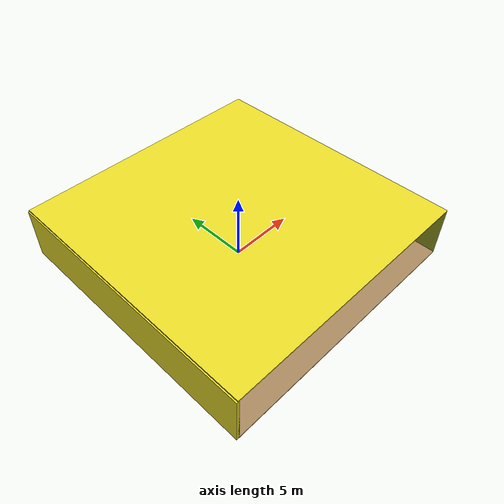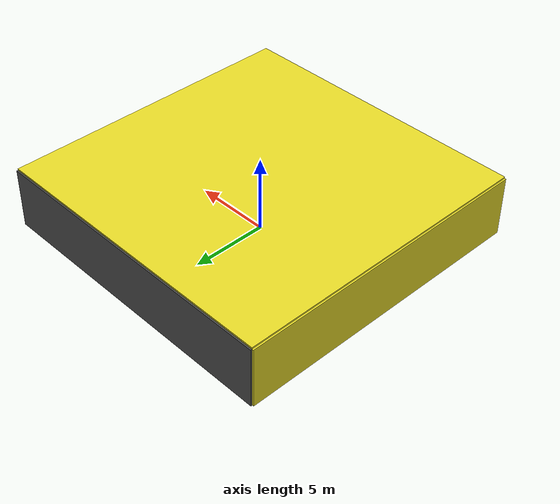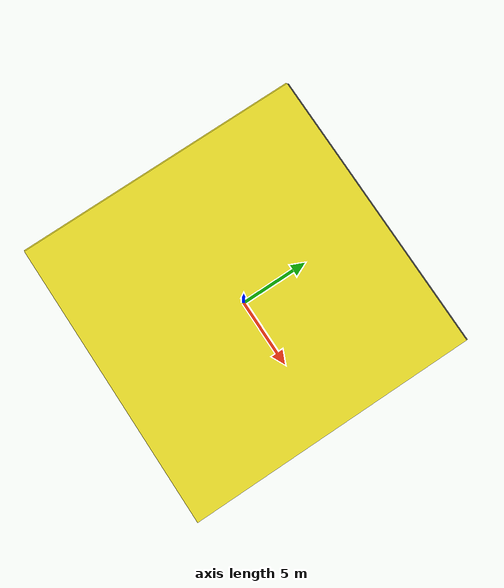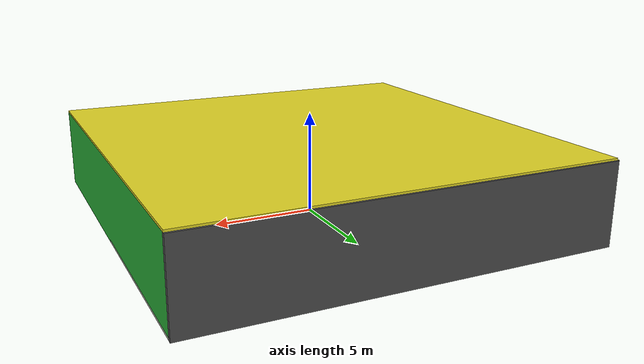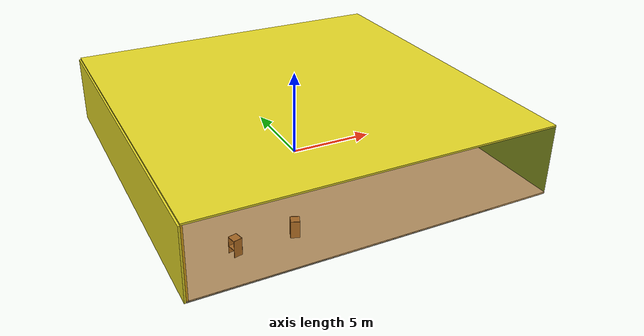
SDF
<sdf version="1.4">
 <world name="default">
  <physics type="ode">
   <max_step_size>0.001</max_step_size>
   <real_time_factor>1</real_time_factor>
   <real_time_update_rate>1000</real_time_update_rate>
   <gravity>0 0 -9.8</gravity>
  </physics>
  <scene><ambient>0.4 0.4 0.4 1</ambient><background>0.7 0.7 0.7 1</background><shadows>1</shadows></scene>
  <model name="Surrounding">
   <static>1</static>
   <link name="Ceiling">
    <collision name="Ceiling_Collision"><geometry><box><size>20 20 0.1</size></box></geometry></collision>
    <visual name="Ceiling_Visual">
     <geometry><box><size>20 20 0.1</size></box></geometry>
     <material>
      <script><uri>file://media/materials/scripts/gazebo.material</uri><name>Gazebo/Yellow</name></script>
     </material>
    </visual>
    <pose>0 0 4.05 0 0 0</pose>
   </link>
   <link name="Wall_South">
    <collision name="Wall_South_Collision">
     <geometry><box><size>20 0 4</size></box></geometry>
     <pose>0 0 2 0 -0 0</pose>
    </collision>
    <visual name="Wall_South_Visual">
     <pose>0 0 2 0 -0 0</pose>
     <geometry><box><size>20 0 4</size></box></geometry>
     <material>
      <script>
       <uri>file://media/materials/scripts/gazebo.material</uri>
       <name>Gazebo/OrangeTransparent</name>
      </script>
     </material>
    </visual>
    <velocity_decay><linear>0</linear><angular>0</angular></velocity_decay>
    <pose>0 -10 0 0 -0 0</pose>
   </link>
   <link name="Wall_East">
    <collision name="Wall_21_Collision">
     <geometry><box><size>20 0 4</size></box></geometry>
     <pose>0 0 2 0 -0 0</pose>
    </collision>
    <visual name="Wall_21_Visual">
     <pose>0 0 2 0 -0 0</pose>
     <geometry><box><size>20 0 4</size></box></geometry>
     <material>
      <script><uri>file://media/materials/scripts/gazebo.material</uri><name>Gazebo/Green</name></script>
     </material>
    </visual>
    <velocity_decay><linear>0</linear><angular>0</angular></velocity_decay>
    <pose>10 0 0 0 -0 1.5708</pose>
   </link>
   <link name="Wall_North">
    <collision name="Wall_22_Collision">
     <geometry><box><size>20 0.2 4</size></box></geometry>
     <pose>0 0 2 0 -0 0</pose>
    </collision>
    <visual name="Wall_22_Visual">
     <pose>0 0 2 0 -0 0</pose>
     <geometry><box><size>20 0.2 4</size></box></geometry>
     <material>
      <script><uri>file://media/materials/scripts/gazebo.material</uri><name>Gazebo/DarkGrey</name></script>
     </material>
    </visual>
    <velocity_decay><linear>0</linear><angular>0</angular></velocity_decay>
    <pose>0 10 0 0 -0 0</pose>
   </link>
   <link name="Wall_West">
    <collision name="Wall_23_Collision">
     <geometry><box><size>20 0.2 4</size></box></geometry>
     <pose>0 0 2 0 -0 0</pose>
    </collision>
    <visual name="Wall_23_Visual">
     <pose>0 0 2 0 -0 0</pose>
     <geometry><box><size>20 0.2 4</size></box></geometry>
     <material>
      <script><uri>file://media/materials/scripts/gazebo.material</uri><name>Gazebo/YellowGlow</name></script>
     </material>
    </visual>
    <velocity_decay><linear>0</linear><angular>0</angular></velocity_decay>
    <pose>-10 0 0 0 0 -1.5708</pose>
   </link>
   <link name="Ground_link">
    <collision name="collision">
     <pose>0 0 .05 0 -0 0</pose>
     <geometry><box><size>20 20 0.1</size></box></geometry>
    </collision>
    <visual name="visual">
     <pose>0 0 .05 0 -0 0</pose>
     <geometry><box><size>20 20 0.1</size></box></geometry>
     <material>
      <script><uri>file://media/materials/scripts/gazebo.material</uri><name>Gazebo/PaintedWall</name></script>
     </material>
    </visual>
   </link>
   <static>1</static>
  </model>
  <spherical_coordinates>
   <surface_model>EARTH_WGS84</surface_model>
   <latitude_deg>0</latitude_deg>
   <longitude_deg>0</longitude_deg>
   <elevation>0</elevation>
   <heading_deg>0</heading_deg>
  </spherical_coordinates>
  <light name="lightball_0" type="diffuse">
   <diffuse>0.8 0.8 0.8 1</diffuse>
   <specular>0.2 0.2 0.2 1</specular>
   <attenuation>
    <range>100</range>
    <constant>0.7</constant>
    <linear>0.01</linear>
    <quadratic>0.001</quadratic>
   </attenuation>
   <direction>-0.5 0.1 -0.9</direction>
   <pose>4.12151846174 -9.40675837617 0.686573821067 0 0 0</pose>
  </light>
  <light name="lightball_1" type="diffuse">
   <diffuse>0.8 0.8 0.8 1</diffuse>
   <specular>0.2 0.2 0.2 1</specular>
   <attenuation>
    <range>100</range>
    <constant>0.7</constant>
    <linear>0.01</linear>
    <quadratic>0.001</quadratic>
   </attenuation>
   <direction>-0.5 0.1 -0.9</direction>
   <pose>-0.893157195437 -9.47017485237 2.62647722994 0 0 0</pose>
  </light>
  <light name="lightball_2" type="diffuse">
   <diffuse>0.8 0.8 0.8 1</diffuse>
   <specular>0.2 0.2 0.2 1</specular>
   <attenuation>
    <range>100</range>
    <constant>0.7</constant>
    <linear>0.01</linear>
    <quadratic>0.001</quadratic>
   </attenuation>
   <direction>-0.5 0.1 -0.9</direction>
   <pose>-8.37108562314 8.3027156793 1.69457150225 0 0 0</pose>
  </light>
  <light name="lightball_3" type="diffuse">
   <diffuse>0.8 0.8 0.8 1</diffuse>
   <specular>0.2 0.2 0.2 1</specular>
   <attenuation>
    <range>100</range>
    <constant>0.7</constant>
    <linear>0.01</linear>
    <quadratic>0.001</quadratic>
   </attenuation>
   <direction>-0.5 0.1 -0.9</direction>
   <pose>9.65167441642 4.83763563646 1.05634766143 0 0 0</pose>
  </light>
  <light name="lightball_4" type="diffuse">
   <diffuse>0.8 0.8 0.8 1</diffuse>
   <specular>0.2 0.2 0.2 1</specular>
   <attenuation>
    <range>100</range>
    <constant>0.7</constant>
    <linear>0.01</linear>
    <quadratic>0.001</quadratic>
   </attenuation>
   <direction>-0.5 0.1 -0.9</direction>
   <pose>-5.93330484524 -9.99966683873 2.51144755324 0 0 0</pose>
  </light>
  <light name="lightball_5" type="diffuse">
   <diffuse>0.8 0.8 0.8 1</diffuse>
   <specular>0.2 0.2 0.2 1</specular>
   <attenuation>
    <range>100</range>
    <constant>0.7</constant>
    <linear>0.01</linear>
    <quadratic>0.001</quadratic>
   </attenuation>
   <direction>-0.5 0.1 -0.9</direction>
   <pose>1.76334917781 1.99703011356 0.865303091492 0 0 0</pose>
  </light>
  <light name="lightball_6" type="diffuse">
   <diffuse>0.8 0.8 0.8 1</diffuse>
   <specular>0.2 0.2 0.2 1</specular>
   <attenuation>
    <range>100</range>
    <constant>0.7</constant>
    <linear>0.01</linear>
    <quadratic>0.001</quadratic>
   </attenuation>
   <direction>-0.5 0.1 -0.9</direction>
   <pose>0.71344864463 8.96085175795 1.42413168367 0 0 0</pose>
  </light>
  <light name="lightball_7" type="diffuse">
   <diffuse>0.8 0.8 0.8 1</diffuse>
   <specular>0.2 0.2 0.2 1</specular>
   <attenuation>
    <range>100</range>
    <constant>0.7</constant>
    <linear>0.01</linear>
    <quadratic>0.001</quadratic>
   </attenuation>
   <direction>-0.5 0.1 -0.9</direction>
   <pose>1.05778921956 -1.36179255665 0.615884670695 0 0 0</pose>
  </light>
  <include><uri>model://cabinet</uri><pose>-6.86172420582 -7.81676137486 0 0 0 0.223134292191</pose></include>
  <include><uri>model://cabinet</uri><pose>-6.75465706518 2.03214491006 0 0 0 2.20158276703</pose></include>
  <include><uri>model://cabinet</uri><pose>-3.70400551722 -7.68925500103 0 0 0 2.7519936421</pose></include>
  <include>
   <uri>model://construction_cone</uri>
   <pose>-4.90297646675 -4.05390539785 0 0 0 1.11958263804</pose>
  </include>
  <include><uri>model://table</uri><pose>-4.65975750182 7.37170494683 0 0 0 0.0316004142623</pose></include>
  <include><uri>model://cabinet</uri><pose>-1.82965412111 1.33384620185 0 0 0 3.02196489329</pose></include>
  <include>
   <uri>model://construction_cone</uri>
   <pose>1.82000554197 5.2776077325 0 0 0 1.23297419827</pose>
  </include>
  <include><uri>model://cabinet</uri><pose>5.05108891549 5.11323223638 0 0 0 1.71393169411</pose></include>
  <include>
   <uri>model://construction_cone</uri>
   <pose>7.80398136237 7.55664723044 0 0 0 0.131193396156</pose>
  </include>
 </world>
</sdf>

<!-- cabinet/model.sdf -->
<sdf version="1.5">
  <model name="cabinet">
    <static>true</static>
    <link name="cabinet_bottom_plate">
      <inertial>
        <pose>0 0 -1 0 0 0</pose>
        <inertia>
          <ixx>2.050000</ixx>
          <ixy>0</ixy>
          <ixz>0</ixz>
          <iyy>2.050000</iyy>
          <iyz>0</iyz>
          <izz>2.050000</izz>
        </inertia>
        <mass>25.000000</mass>
      </inertial>
      <collision name="cabinet_bottom_plate_geom">
        <pose>0 0 0.010000 0 0 0</pose>
        <geometry>
          <box>
            <size>0.450000 0.450000 0.020000</size>
          </box>
        </geometry>
      </collision>
      <visual name="cabinet_bottom_plate_geom_visual">
        <pose>0 0 0.010000 0 0 0</pose>
        <geometry>
          <box>
            <size>0.450000 0.450000 0.020000</size>
          </box>
        </geometry>
        <material>
          <script>
            <uri>model://media/materials/scripts/gazebo.material</uri>
            <name>Gazebo/Wood</name>
          </script>
        </material>
      </visual>
      <collision name="cabinet_bottom_plate_geom_cabinet_back_plate">
        <pose>0.235000 0 0.510000 0 0 0</pose>
        <geometry>
          <box>
            <size>0.020000 0.450000 1.020000</size>
          </box>
        </geometry>
      </collision>
      <visual name="cabinet_bottom_plate_geom_cabinet_back_plate_visual">
        <pose>0.235000 0 0.510000 0 0 0</pose>
        <geometry>
          <box>
            <size>0.020000 0.450000 1.020000</size>
          </box>
        </geometry>
        <material>
          <script>
            <uri>model://media/materials/scripts/gazebo.material</uri>
            <name>Gazebo/Wood</name>
          </script>
        </material>
      </visual>
      <collision name="cabinet_bottom_plate_geom_cabinet_left_plate">
        <pose>0 0.235000 0.510000 0 0 0</pose>
        <geometry>
          <box>
            <size>0.450000 0.020000 1.020000</size>
          </box>
        </geometry>
      </collision>
      <visual name="cabinet_bottom_plate_geom_cabinet_left_plate_visual">
        <pose>0 0.235000 0.510000 0 0 0</pose>
        <geometry>
          <box>
            <size>0.450000 0.020000 1.020000</size>
          </box>
        </geometry>
        <material>
          <script>
            <uri>model://media/materials/scripts/gazebo.material</uri>
            <name>Gazebo/Wood</name>
          </script>
        </material>
      </visual>
      <collision name="cabinet_bottom_plate_geom_cabinet_middle_plate">
        <pose>0 0 0.510000 0 0 0</pose>
        <geometry>
          <box>
            <size>0.450000 0.450000 0.020000</size>
          </box>
        </geometry>
      </collision>
      <visual name="cabinet_bottom_plate_geom_cabinet_middle_plate_visual">
        <pose>0 0 0.510000 0 0 0</pose>
        <geometry>
          <box>
            <size>0.450000 0.450000 0.020000</size>
          </box>
        </geometry>
        <material>
          <script>
            <uri>model://media/materials/scripts/gazebo.material</uri>
            <name>Gazebo/Wood</name>
          </script>
        </material>
      </visual>
      <collision name="cabinet_bottom_plate_geom_cabinet_right_plate">
        <pose>0 -0.235000 0.510000 0 0 0</pose>
        <geometry>
          <box>
            <size>0.450000 0.020000 1.020000</size>
          </box>
        </geometry>
      </collision>
      <visual name="cabinet_bottom_plate_geom_cabinet_right_plate_visual">
        <pose>0 -0.235000 0.510000 0 0 0</pose>
        <geometry>
          <box>
            <size>0.450000 0.020000 1.020000</size>
          </box>
        </geometry>
        <material>
          <script>
            <uri>model://media/materials/scripts/gazebo.material</uri>
            <name>Gazebo/Wood</name>
          </script>
        </material>
      </visual>
      <collision name="cabinet_bottom_plate_geom_cabinet_top_plate">
        <pose>0 0 1.010000 0 0 0</pose>
        <geometry>
          <box>
            <size>0.450000 0.450000 0.020000</size>
          </box>
        </geometry>
      </collision>
      <visual name="cabinet_bottom_plate_geom_cabinet_top_plate_visual">
        <pose>0 0 1.010000 0 0 0</pose>
        <geometry>
          <box>
            <size>0.450000 0.450000 0.020000</size>
          </box>
        </geometry>
        <material>
          <script>
            <uri>model://media/materials/scripts/gazebo.material</uri>
            <name>Gazebo/Wood</name>
          </script>
        </material>
      </visual>
    </link>
  </model>
</sdf>

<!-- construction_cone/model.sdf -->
<sdf version="1.5">
  <model name="Construction Cone">
    <link name="link">
      <collision name="collision">
        <geometry>
          <mesh>
            <scale>10 10 10</scale>
            <uri>file://isr-testbed/construction_cone/meshes/construction_cone.dae</uri>
          </mesh>
        </geometry>
      </collision>
      <visual name="visual">
        <geometry>
          <mesh>
            <scale>10 10 10</scale>
            <uri>file://isr-testbed/construction_cone/meshes/construction_cone.dae</uri>
          </mesh>
        </geometry>
      </visual>
    </link>
  </model>
</sdf>

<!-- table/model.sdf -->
<sdf version="1.5">
  <model name="table">
    <static>true</static>
    <link name="link">
      <collision name="surface">
        <pose>0 0 1.0 0 0 0</pose>
        <geometry>
          <box>
            <size>1.5 0.8 0.03</size>
          </box>
        </geometry>
        <surface>
          <friction>
            <ode>
              <mu>0.6</mu>
              <mu2>0.6</mu2>
            </ode>
          </friction>
        </surface>
      </collision>
      <visual name="visual1">
        <pose>0 0 1.0 0 0 0</pose>
        <geometry>
          <box>
            <size>1.5 0.8 0.03</size>
          </box>
        </geometry>
        <material>
          <script>
            <uri>model://media/materials/scripts/gazebo.material</uri>
            <name>Gazebo/Wood</name>
          </script>
        </material>
      </visual>
      <collision name="front_left_leg">
        <pose>0.68 0.38 0.5 0 0 0</pose>
        <geometry>
          <cylinder>
            <radius>0.02</radius>
            <length>1.0</length>
          </cylinder>
        </geometry>
      </collision>
      <visual name="front_left_leg">
        <pose>0.68 0.38 0.5 0 0 0</pose>
        <geometry>
          <cylinder>
            <radius>0.02</radius>
            <length>1.0</length>
          </cylinder>
        </geometry>
        <material>
          <script>
            <uri>model://media/materials/scripts/gazebo.material</uri>
            <name>Gazebo/Grey</name>
          </script>
        </material>
      </visual>
      <collision name="front_right_leg">
        <pose>0.68 -0.38 0.5 0 0 0</pose>
        <geometry>
          <cylinder>
            <radius>0.02</radius>
            <length>1.0</length>
          </cylinder>
        </geometry>
      </collision>
      <visual name="front_right_leg">
        <pose>0.68 -0.38 0.5 0 0 0</pose>
        <geometry>
          <cylinder>
            <radius>0.02</radius>
            <length>1.0</length>
          </cylinder>
        </geometry>
        <material>
          <script>
            <uri>model://media/materials/scripts/gazebo.material</uri>
            <name>Gazebo/Grey</name>
          </script>
        </material>
      </visual>
      <collision name="back_right_leg">
        <pose>-0.68 -0.38 0.5 0 0 0</pose>
        <geometry>
          <cylinder>
            <radius>0.02</radius>
            <length>1.0</length>
          </cylinder>
        </geometry>
      </collision>
      <visual name="back_right_leg">
        <pose>-0.68 -0.38 0.5 0 0 0</pose>
        <geometry>
          <cylinder>
            <radius>0.02</radius>
            <length>1.0</length>
          </cylinder>
        </geometry>
        <material>
          <script>
            <uri>model://media/materials/scripts/gazebo.material</uri>
            <name>Gazebo/Grey</name>
          </script>
        </material>
      </visual>
      <collision name="back_left_leg">
        <pose>-0.68 0.38 0.5 0 0 0</pose>
        <geometry>
          <cylinder>
            <radius>0.02</radius>
            <length>1.0</length>
          </cylinder>
        </geometry>
      </collision>
      <visual name="back_left_leg">
        <pose>-0.68 0.38 0.5 0 0 0</pose>
        <geometry>
          <cylinder>
            <radius>0.02</radius>
            <length>1.0</length>
          </cylinder>
        </geometry>
        <material>
          <script>
            <uri>model://media/materials/scripts/gazebo.material</uri>
            <name>Gazebo/Grey</name>
          </script>
        </material>
      </visual>
    </link>
  </model>
</sdf>
